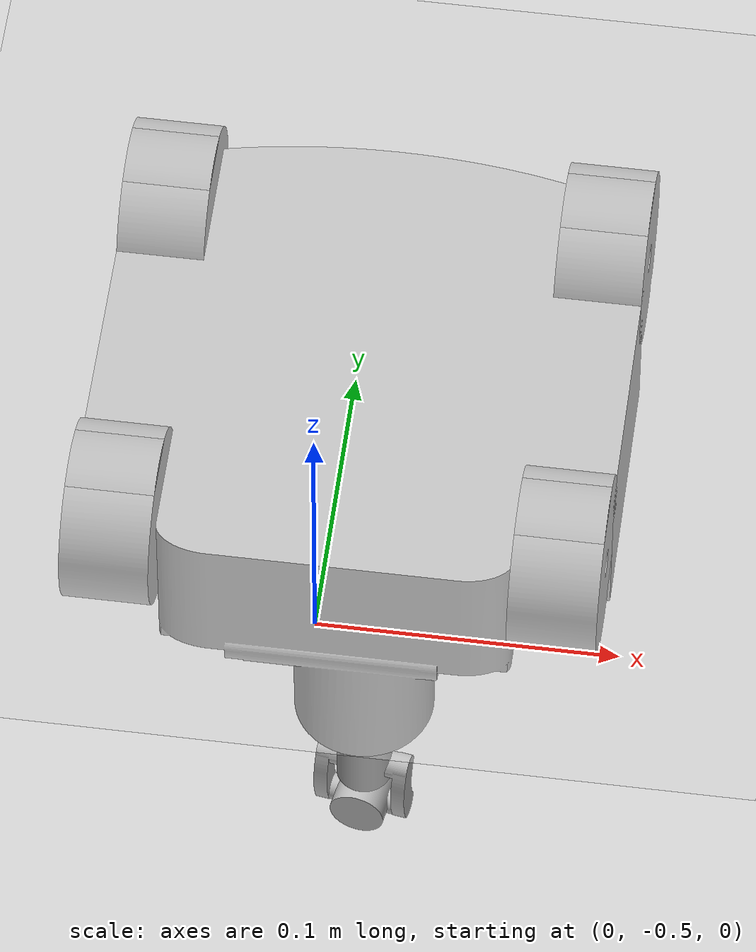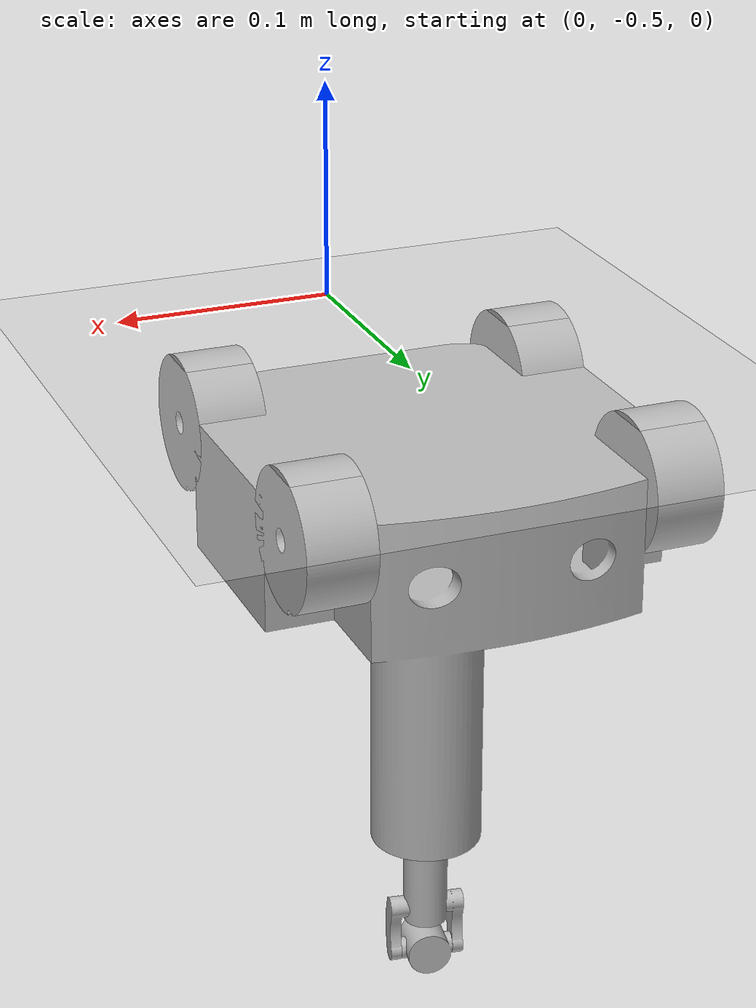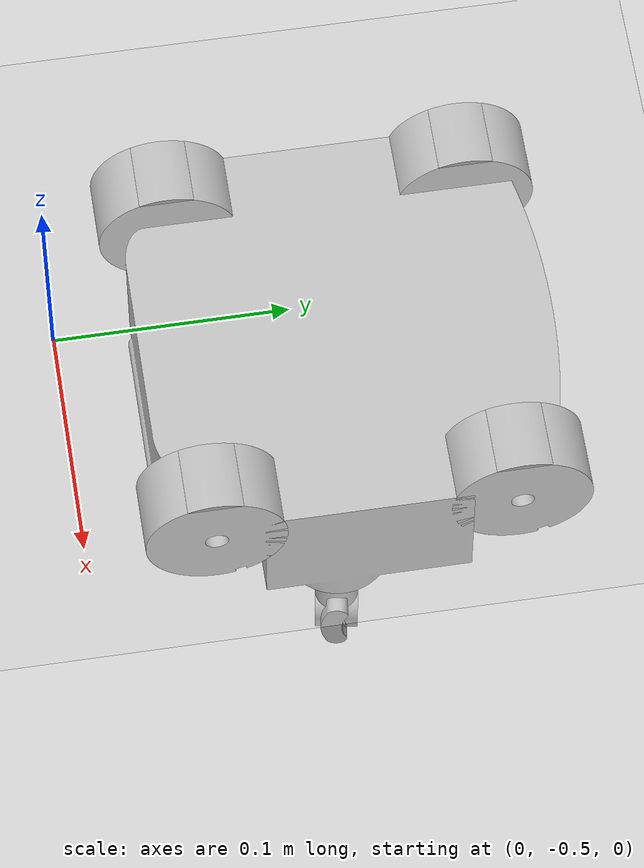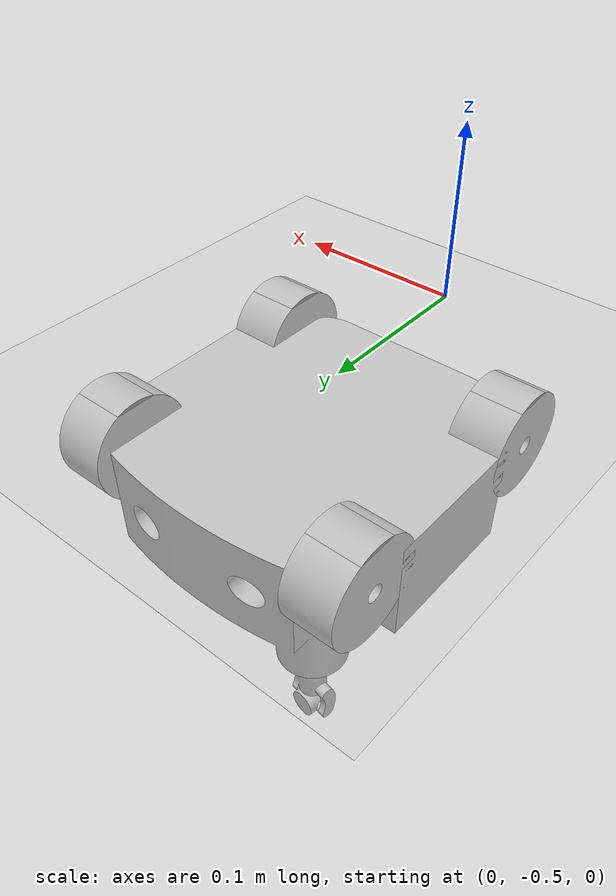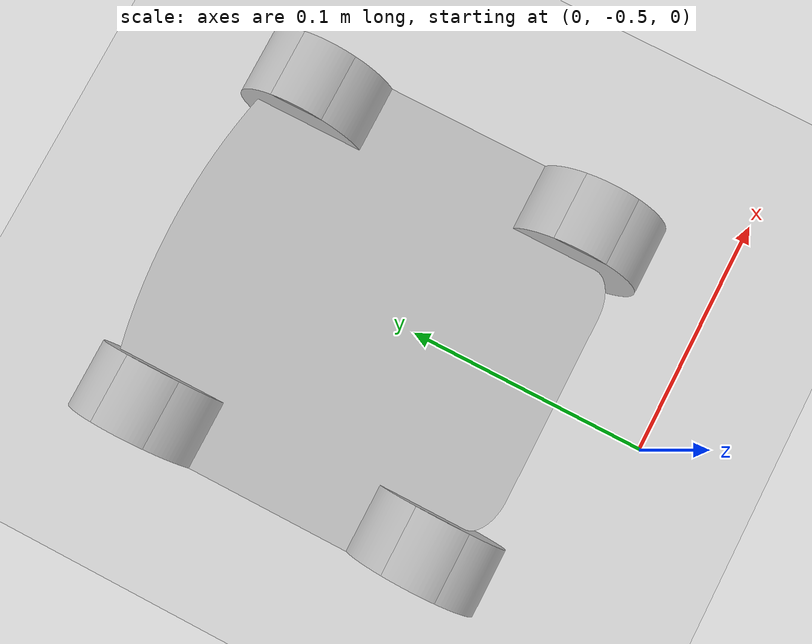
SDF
<?xml version='1.0' encoding='utf-8'?>
<sdf version="1.7">
<world name="car_world">
    <physics name="1ms" type="ignored">
        <max_step_size>0.001</max_step_size>
        <real_time_factor>1.0</real_time_factor>
    </physics>
    <plugin
        filename="libignition-gazebo-physics-system.so"
        name="ignition::gazebo::systems::Physics">
    </plugin>
    <plugin
        filename="libignition-gazebo-user-commands-system.so"
        name="ignition::gazebo::systems::UserCommands">
    </plugin>
    <plugin
        filename="libignition-gazebo-scene-broadcaster-system.so"
        name="ignition::gazebo::systems::SceneBroadcaster">
    </plugin>

    <light type="directional" name="sun">
        <cast_shadows>true</cast_shadows>
        <pose>0 0 10 0 0 0</pose>
        <diffuse>0.8 0.8 0.8 1</diffuse>
        <specular>0.2 0.2 0.2 1</specular>
        <attenuation>
            <range>1000</range>
            <constant>0.9</constant>
            <linear>0.01</linear>
            <quadratic>0.001</quadratic>
        </attenuation>
        <direction>-0.5 0.1 -0.9</direction>
    </light>
    <model name="ground_plane">
        <static>true</static>
        <link name="link">
            <collision name="collision">
            <geometry>
                <plane>
                <normal>0 0 1</normal>
                </plane>
            </geometry>
            </collision>
            <visual name="visual">
            <geometry>
                <plane>
                <normal>0 0 1</normal>
                <size>100 100</size>
                </plane>
            </geometry>
            <material>
                <ambient>0.8 0.8 0.8 1</ambient>
                <diffuse>0.8 0.8 0.8 1</diffuse>
                <specular>0.8 0.8 0.8 1</specular>
            </material>
            </visual>
        </link>
    </model>
    <model name="RaspRover">
        <link name="Frame">
            <pose>-0.20028636462047886 -0.19208693208140987 -0.025302502944574354 0.0 -0.0 0.0</pose>
            <inertial>
                <mass>5.579383607380707</mass>
                <pose>0.20028636462033814 -0.18323941887010897 -0.06135761534332392 0.0 0.0 0.0</pose>
                <inertia>
                    <ixx>0.02847691327034607</ixx>
                    <iyy>0.02865581345503715</iyy>
                    <izz>0.019928345018228377</izz>
                    <ixy>6.472854537060589e-14</ixy>
                    <iyz>-0.0008419559123031273</iyz>
                    <ixz>2.1132946891482912e-14</ixz>
                </inertia>
            </inertial>
            <visual name="Frame_visual">
                <geometry>
                    <mesh>
                        <uri>file://meshes/Frame.stl</uri>
                        <scale>0.001 0.001 0.001</scale>
                    </mesh>
                </geometry>
            </visual>
            <collision name="Frame_collision">
                <geometry>
                    <mesh>
                        <uri>file://meshes/Frame.stl</uri>
                        <scale>0.001 0.001 0.001</scale>
                    </mesh>
                </geometry>
            </collision>
        </link>
        <link name="Wheel_BR">
            <pose>0.05540000000000006 -0.328775291827747 -0.07799189387866866 3.141592653589793 3.6113264991378444e-29 1.462882103035501e-15</pose>
            <inertial>
                <mass>0.6443509094467514</mass>
                <pose>-0.13040083823203708 0.11519385390312534 -0.050130826530644726 0.0 0.0 0.0</pose>
                <inertia>
                    <ixx>0.0002968568953161683</ixx>
                    <iyy>0.00019567138334215822</iyy>
                    <izz>0.00019786483354355922</izz>
                    <ixy>-3.1298758269496377e-09</ixy>
                    <iyz>-6.085253848441708e-07</iyz>
                    <ixz>1.5396041223816887e-08</ixz>
                </inertia>
            </inertial>
            <visual name="Wheel_BR_visual">
                <geometry>
                    <mesh>
                        <uri>file://meshes/Wheel_BR.stl</uri>
                        <scale>0.001 0.001 0.001</scale>
                    </mesh>
                </geometry>
            </visual>
            <collision name="Wheel_BR_collision">
                <geometry>
                    <mesh>
                        <uri>file://meshes/Wheel_BR.stl</uri>
                        <scale>0.001 0.001 0.001</scale>
                    </mesh>
                </geometry>
            </collision>
        </link>
        <link name="Wheel_BL">
            <pose>-0.07460000000000014 -0.32877529182774695 -0.07799189387866864 3.141592653589793 -1.3357091424688758e-29 -2.6188201933805157e-15</pose>
            <inertial>
                <mass>0.6443509094520935</mass>
                <pose>0.14959916176784255 0.1151938539030266 -0.05013082653041756 0.0 0.0 0.0</pose>
                <inertia>
                    <ixx>0.00029685689532088673</ixx>
                    <iyy>0.00019567138334729387</iyy>
                    <izz>0.00019786483354541885</izz>
                    <ixy>-3.129876764113324e-09</ixy>
                    <iyz>-6.085253830955695e-07</iyz>
                    <ixz>1.539604337400415e-08</ixz>
                </inertia>
            </inertial>
            <visual name="Wheel_BL_visual">
                <geometry>
                    <mesh>
                        <uri>file://meshes/Wheel_BL.stl</uri>
                        <scale>0.001 0.001 0.001</scale>
                    </mesh>
                </geometry>
            </visual>
            <collision name="Wheel_BL_collision">
                <geometry>
                    <mesh>
                        <uri>file://meshes/Wheel_BL.stl</uri>
                        <scale>0.001 0.001 0.001</scale>
                    </mesh>
                </geometry>
            </collision>
        </link>
        <link name="Wheel_FR">
            <pose>0.055400000000000456 -0.3895752918277476 -0.0779918938786686 3.141592653589793 3.0511890341122624e-29 1.462882103035501e-15</pose>
            <inertial>
                <mass>0.6443509094520934</mass>
                <pose>-0.13040083823215917 -0.07480614609697454 -0.05013082653041758 0.0 0.0 0.0</pose>
                <inertia>
                    <ixx>0.0002968568953209006</ixx>
                    <iyy>0.00019567138334730688</iyy>
                    <izz>0.000197864833545516</izz>
                    <ixy>-3.1298767741086556e-09</ixy>
                    <iyz>-6.085253830955695e-07</iyz>
                    <ixz>1.5396043375090837e-08</ixz>
                </inertia>
            </inertial>
            <visual name="Wheel_FR_visual">
                <geometry>
                    <mesh>
                        <uri>file://meshes/Wheel_FR.stl</uri>
                        <scale>0.001 0.001 0.001</scale>
                    </mesh>
                </geometry>
            </visual>
            <collision name="Wheel_FR_collision">
                <geometry>
                    <mesh>
                        <uri>file://meshes/Wheel_FR.stl</uri>
                        <scale>0.001 0.001 0.001</scale>
                    </mesh>
                </geometry>
            </collision>
        </link>
        <link name="Wheel_FL">
            <pose>-0.07460000000000024 -0.3895752918277479 -0.07799189387866859 3.141592653589793 3.611326499137845e-29 1.4628821030355011e-15</pose>
            <inertial>
                <mass>0.6443509094520934</mass>
                <pose>0.14959916176784246 -0.07480614609697432 -0.05013082653041756 0.0 0.0 0.0</pose>
                <inertia>
                    <ixx>0.0002968568953209145</ixx>
                    <iyy>0.00019567138334731555</iyy>
                    <izz>0.00019786483354548824</izz>
                    <ixy>-3.129876765435038e-09</ixy>
                    <iyz>-6.085253830964369e-07</iyz>
                    <ixz>1.5396043374873997e-08</ixz>
                </inertia>
            </inertial>
            <visual name="Wheel_FL_visual">
                <geometry>
                    <mesh>
                        <uri>file://meshes/Wheel_FL.stl</uri>
                        <scale>0.001 0.001 0.001</scale>
                    </mesh>
                </geometry>
            </visual>
            <collision name="Wheel_FL_collision">
                <geometry>
                    <mesh>
                        <uri>file://meshes/Wheel_FL.stl</uri>
                        <scale>0.001 0.001 0.001</scale>
                    </mesh>
                </geometry>
            </collision>
        </link>
        <link name="Camera_Pitch">
            <pose>-2.842170943040401e-16 -0.3793352918277483 -0.07799189387866165 3.141592653589769 -3.884881455317634e-15 -0.1606758249850119</pose>
            <inertial>
                <mass>0.05213056282264724</mass>
                <pose>-3.3441221246454055e-17 1.836797609000812e-06 0.20006247508067992 0.0 0.0 0.0</pose>
                <inertia>
                    <ixx>2.91601609138738e-06</ixx>
                    <iyy>2.8170931807334762e-06</iyy>
                    <izz>3.2214641298190743e-06</izz>
                    <ixy>7.481947902215678e-19</ixy>
                    <iyz>-1.7698229725906043e-11</iyz>
                    <ixz>-1.409348177340042e-19</ixz>
                </inertia>
            </inertial>
            <visual name="Camera_Pitch_visual">
                <geometry>
                    <mesh>
                        <uri>file://meshes/Camera_Pitch.stl</uri>
                        <scale>0.001 0.001 0.001</scale>
                    </mesh>
                </geometry>
            </visual>
            <collision name="Camera_Pitch_collision">
                <geometry>
                    <mesh>
                        <uri>file://meshes/Camera_Pitch.stl</uri>
                        <scale>0.001 0.001 0.001</scale>
                    </mesh>
                </geometry>
            </collision>
        </link>
        <link name="Camera_Yaw">
            <pose>-6.439293542825907e-17 -0.3793352918277485 -0.07799189387866165 3.141592653589769 -3.884881455317659e-15 -0.1606758249850119</pose>
            <inertial>
                <mass>0.13790261521555988</mass>
                <pose>-1.3375277545663042e-14 0.00016850349875628524 0.1675507575718993 0.0 0.0 0.0</pose>
                <inertia>
                    <ixx>3.8542632764779055e-05</ixx>
                    <iyy>4.374497908417354e-05</iyy>
                    <izz>1.125784044193191e-05</izz>
                    <ixy>-9.900968120455655e-18</ixy>
                    <iyz>-5.570729306383907e-07</iyz>
                    <ixz>5.920377089613141e-18</ixz>
                </inertia>
            </inertial>
            <visual name="Camera_Yaw_visual">
                <geometry>
                    <mesh>
                        <uri>file://meshes/Camera_Yaw.stl</uri>
                        <scale>0.001 0.001 0.001</scale>
                    </mesh>
                </geometry>
            </visual>
            <collision name="Camera_Yaw_collision">
                <geometry>
                    <mesh>
                        <uri>file://meshes/Camera_Yaw.stl</uri>
                        <scale>0.001 0.001 0.001</scale>
                    </mesh>
                </geometry>
            </collision>
        </link>
        <joint name="Frame_Revolute-1" type="revolute">
            <pose>-0.11540000000000067 -0.07484029182774803 -0.049999893878668565 0.0 0.0 0.0</pose>
            <parent>Frame</parent>
            <child>Wheel_FR</child>
            <axis>
                <xyz expressed_in="__model__">1.0 0.0 0.0</xyz>
            </axis>
        </joint>
        <joint name="Frame_Revolute-2" type="revolute">
            <pose>0.13460000000000072 -0.07484029182774785 -0.04999989387866855 0.0 0.0 0.0</pose>
            <parent>Frame</parent>
            <child>Wheel_FL</child>
            <axis>
                <xyz expressed_in="__model__">1.0 0.0 0.0</xyz>
            </axis>
        </joint>
        <joint name="Frame_Revolute-3" type="revolute">
            <pose>0.13460000000000083 0.1151597081722531 -0.049999893878668586 0.0 0.0 0.0</pose>
            <parent>Frame</parent>
            <child>Wheel_BL</child>
            <axis>
                <xyz expressed_in="__model__">1.0 -0.0 0.0</xyz>
            </axis>
        </joint>
        <joint name="Frame_Revolute-4" type="revolute">
            <pose>-0.11540000000000056 0.11515970817225309 -0.0499998938786686 0.0 0.0 0.0</pose>
            <parent>Frame</parent>
            <child>Wheel_BR</child>
            <axis>
                <xyz expressed_in="__model__">1.0 0.0 0.0</xyz>
            </axis>
        </joint>
        <joint name="Frame_Revolute-5" type="revolute">
            <pose>-4.6688168773923206e-08 -2.88068831526081e-07 0.14000010612133823 0.0 0.0 0.0</pose>
            <parent>Frame</parent>
            <child>Camera_Yaw</child>
            <axis>
                <xyz expressed_in="__model__">0.0 -0.0 -1.0</xyz>
                <limit>
                    <lower>-1.570796</lower>
                    <upper>1.570796</upper>
                </limit>
            </axis>
        </joint>
        <joint name="Camera_Yaw_Revolute-6" type="revolute">
            <pose>0.011999554344413441 -4.547161257262049e-08 0.20100010612133826 0.0 0.0 0.0</pose>
            <parent>Camera_Yaw</parent>
            <child>Camera_Pitch</child>
            <axis>
                <xyz expressed_in="__model__">0.987119 -0.159985 0.0</xyz>
                <limit>
                    <lower>-1.047198</lower>
                    <upper>0.523599</upper>
                </limit>
            </axis>
        </joint>
    </model>
</world>
</sdf>
